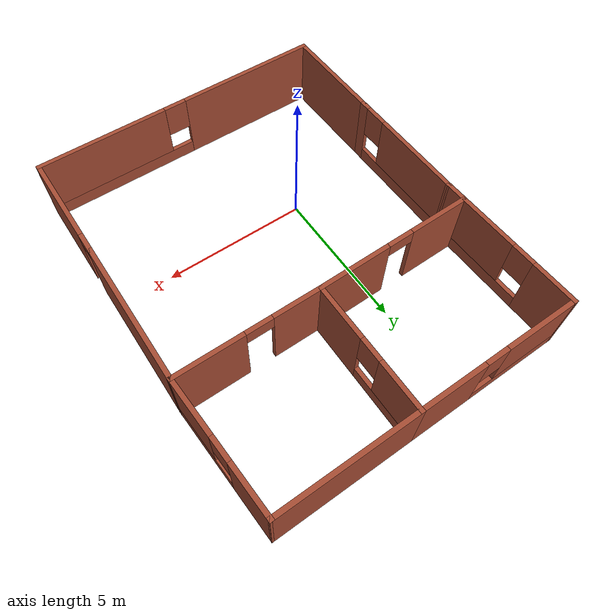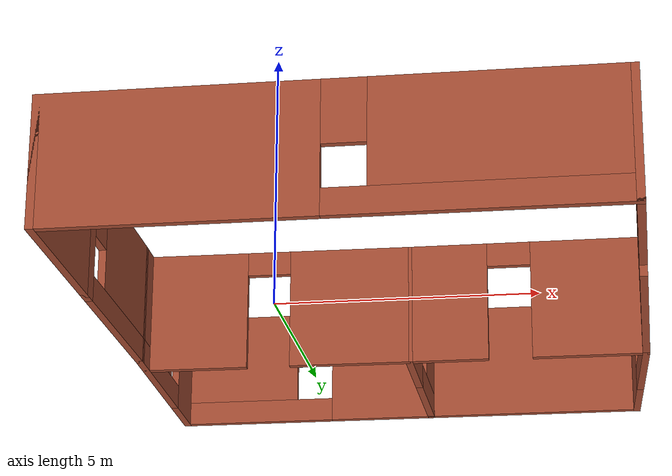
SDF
<?xml version='1.0'?>
<sdf version='1.7'>
  <model name='Map4'>
    <pose>1.69636 2.01709 0 0 -0 0</pose>
    <link name='Wall_0'>
      <collision name='Wall_0_Collision'>
        <geometry>
          <box>
            <size>3.75 0.15 2.5</size>
          </box>
        </geometry>
        <pose>0 0 1.25 0 -0 0</pose>
      </collision>
      <visual name='Wall_0_Visual'>
        <pose>0 0 1.25 0 -0 0</pose>
        <geometry>
          <box>
            <size>3.75 0.15 2.5</size>
          </box>
        </geometry>
        <material>
          <script>
            <uri>file://media/materials/scripts/gazebo.material</uri>
            <name>Gazebo/Bricks</name>
          </script>
          <ambient>1 1 1 1</ambient>
        </material>
        <meta>
          <layer>0</layer>
        </meta>
      </visual>
      <pose>-5.12636 -4.72709 0 0 -0 -1.5708</pose>
    </link>
    <link name='Wall_1'>
      <pose>0.048638 -6.52709 0 0 -0 0</pose>
      <visual name='Wall_1_Visual_0'>
        <pose>-2.71065 0 1.25 0 -0 0</pose>
        <geometry>
          <box>
            <size>5.07869 0.15 2.5</size>
          </box>
        </geometry>
        <material>
          <script>
            <uri>file://media/materials/scripts/gazebo.material</uri>
            <name>Gazebo/Bricks</name>
          </script>
          <ambient>1 1 1 1</ambient>
        </material>
        <meta>
          <layer>0</layer>
        </meta>
      </visual>
      <collision name='Wall_1_Collision_0'>
        <geometry>
          <box>
            <size>5.07869 0.15 2.5</size>
          </box>
        </geometry>
        <pose>-2.71065 0 1.25 0 -0 0</pose>
      </collision>
      <visual name='Wall_1_Visual_1'>
        <pose>2.53935 0 0.25 0 -0 0</pose>
        <geometry>
          <box>
            <size>5.42131 0.15 0.5</size>
          </box>
        </geometry>
        <material>
          <script>
            <uri>file://media/materials/scripts/gazebo.material</uri>
            <name>Gazebo/Bricks</name>
          </script>
          <ambient>1 1 1 1</ambient>
        </material>
        <meta>
          <layer>0</layer>
        </meta>
      </visual>
      <collision name='Wall_1_Collision_1'>
        <geometry>
          <box>
            <size>5.42131 0.15 0.5</size>
          </box>
        </geometry>
        <pose>2.53935 0 0.25 0 -0 0</pose>
      </collision>
      <visual name='Wall_1_Visual_2'>
        <pose>2.93935 0 1.5 0 -0 0</pose>
        <geometry>
          <box>
            <size>4.62131 0.15 2</size>
          </box>
        </geometry>
        <material>
          <script>
            <uri>file://media/materials/scripts/gazebo.material</uri>
            <name>Gazebo/Bricks</name>
          </script>
          <ambient>1 1 1 1</ambient>
        </material>
        <meta>
          <layer>0</layer>
        </meta>
      </visual>
      <collision name='Wall_1_Collision_2'>
        <geometry>
          <box>
            <size>4.62131 0.15 2</size>
          </box>
        </geometry>
        <pose>2.93935 0 1.5 0 -0 0</pose>
      </collision>
      <visual name='Wall_1_Visual_3'>
        <pose>0.228691 0 1.9 0 -0 0</pose>
        <geometry>
          <box>
            <size>0.8 0.15 1.2</size>
          </box>
        </geometry>
        <material>
          <script>
            <uri>file://media/materials/scripts/gazebo.material</uri>
            <name>Gazebo/Bricks</name>
          </script>
          <ambient>1 1 1 1</ambient>
        </material>
        <meta>
          <layer>0</layer>
        </meta>
      </visual>
      <collision name='Wall_1_Collision_3'>
        <geometry>
          <box>
            <size>0.8 0.15 1.2</size>
          </box>
        </geometry>
        <pose>0.228691 0 1.9 0 -0 0</pose>
      </collision>
    </link>
    <link name='Wall_10'>
      <pose>0.373638 4.34791 0 0 -0 1.5708</pose>
      <visual name='Wall_10_Visual_0'>
        <pose>-1.26203 0 1.25 0 -0 0</pose>
        <geometry>
          <box>
            <size>1.97595 0.15 2.5</size>
          </box>
        </geometry>
        <material>
          <script>
            <uri>file://media/materials/scripts/gazebo.material</uri>
            <name>Gazebo/Bricks</name>
          </script>
          <ambient>1 1 1 1</ambient>
        </material>
        <meta>
          <layer>0</layer>
        </meta>
      </visual>
      <collision name='Wall_10_Collision_0'>
        <geometry>
          <box>
            <size>1.97595 0.15 2.5</size>
          </box>
        </geometry>
        <pose>-1.26203 0 1.25 0 -0 0</pose>
      </collision>
      <visual name='Wall_10_Visual_1'>
        <pose>0.987973 0 0.25 0 -0 0</pose>
        <geometry>
          <box>
            <size>2.52405 0.15 0.5</size>
          </box>
        </geometry>
        <material>
          <script>
            <uri>file://media/materials/scripts/gazebo.material</uri>
            <name>Gazebo/Bricks</name>
          </script>
          <ambient>1 1 1 1</ambient>
        </material>
        <meta>
          <layer>0</layer>
        </meta>
      </visual>
      <collision name='Wall_10_Collision_1'>
        <geometry>
          <box>
            <size>2.52405 0.15 0.5</size>
          </box>
        </geometry>
        <pose>0.987973 0 0.25 0 -0 0</pose>
      </collision>
      <visual name='Wall_10_Visual_2'>
        <pose>1.38797 0 1.5 0 -0 0</pose>
        <geometry>
          <box>
            <size>1.72405 0.15 2</size>
          </box>
        </geometry>
        <material>
          <script>
            <uri>file://media/materials/scripts/gazebo.material</uri>
            <name>Gazebo/Bricks</name>
          </script>
          <ambient>1 1 1 1</ambient>
        </material>
        <meta>
          <layer>0</layer>
        </meta>
      </visual>
      <collision name='Wall_10_Collision_2'>
        <geometry>
          <box>
            <size>1.72405 0.15 2</size>
          </box>
        </geometry>
        <pose>1.38797 0 1.5 0 -0 0</pose>
      </collision>
      <visual name='Wall_10_Visual_3'>
        <pose>0.125947 0 1.9 0 -0 0</pose>
        <geometry>
          <box>
            <size>0.8 0.15 1.2</size>
          </box>
        </geometry>
        <material>
          <script>
            <uri>file://media/materials/scripts/gazebo.material</uri>
            <name>Gazebo/Bricks</name>
          </script>
          <ambient>1 1 1 1</ambient>
        </material>
        <meta>
          <layer>0</layer>
        </meta>
      </visual>
      <collision name='Wall_10_Collision_3'>
        <geometry>
          <box>
            <size>0.8 0.15 1.2</size>
          </box>
        </geometry>
        <pose>0.125947 0 1.9 0 -0 0</pose>
      </collision>
    </link>
    <link name='Wall_11'>
      <pose>-2.42636 6.52291 0 0 -0 3.14159</pose>
      <visual name='Wall_11_Visual_0'>
        <pose>-1.70994 0 1.25 0 -0 0</pose>
        <geometry>
          <box>
            <size>2.33012 0.15 2.5</size>
          </box>
        </geometry>
        <material>
          <script>
            <uri>file://media/materials/scripts/gazebo.material</uri>
            <name>Gazebo/Bricks</name>
          </script>
          <ambient>1 1 1 1</ambient>
        </material>
        <meta>
          <layer>0</layer>
        </meta>
      </visual>
      <collision name='Wall_11_Collision_0'>
        <geometry>
          <box>
            <size>2.33012 0.15 2.5</size>
          </box>
        </geometry>
        <pose>-1.70994 0 1.25 0 -0 0</pose>
      </collision>
      <visual name='Wall_11_Visual_1'>
        <pose>1.16506 0 0.25 0 -0 0</pose>
        <geometry>
          <box>
            <size>3.41988 0.15 0.5</size>
          </box>
        </geometry>
        <material>
          <script>
            <uri>file://media/materials/scripts/gazebo.material</uri>
            <name>Gazebo/Bricks</name>
          </script>
          <ambient>1 1 1 1</ambient>
        </material>
        <meta>
          <layer>0</layer>
        </meta>
      </visual>
      <collision name='Wall_11_Collision_1'>
        <geometry>
          <box>
            <size>3.41988 0.15 0.5</size>
          </box>
        </geometry>
        <pose>1.16506 0 0.25 0 -0 0</pose>
      </collision>
      <visual name='Wall_11_Visual_2'>
        <pose>1.56506 0 1.5 0 -0 0</pose>
        <geometry>
          <box>
            <size>2.61988 0.15 2</size>
          </box>
        </geometry>
        <material>
          <script>
            <uri>file://media/materials/scripts/gazebo.material</uri>
            <name>Gazebo/Bricks</name>
          </script>
          <ambient>1 1 1 1</ambient>
        </material>
        <meta>
          <layer>0</layer>
        </meta>
      </visual>
      <collision name='Wall_11_Collision_2'>
        <geometry>
          <box>
            <size>2.61988 0.15 2</size>
          </box>
        </geometry>
        <pose>1.56506 0 1.5 0 -0 0</pose>
      </collision>
      <visual name='Wall_11_Visual_3'>
        <pose>-0.144876 0 1.9 0 -0 0</pose>
        <geometry>
          <box>
            <size>0.8 0.15 1.2</size>
          </box>
        </geometry>
        <material>
          <script>
            <uri>file://media/materials/scripts/gazebo.material</uri>
            <name>Gazebo/Bricks</name>
          </script>
          <ambient>1 1 1 1</ambient>
        </material>
        <meta>
          <layer>0</layer>
        </meta>
      </visual>
      <collision name='Wall_11_Collision_3'>
        <geometry>
          <box>
            <size>0.8 0.15 1.2</size>
          </box>
        </geometry>
        <pose>-0.144876 0 1.9 0 -0 0</pose>
      </collision>
    </link>
    <link name='Wall_12'>
      <pose>-5.17636 3.97291 0 0 -0 -1.55119</pose>
      <visual name='Wall_12_Visual_0'>
        <pose>-1.83319 0 1.25 0 -0 0</pose>
        <geometry>
          <box>
            <size>1.58459 0.15 2.5</size>
          </box>
        </geometry>
        <material>
          <script>
            <uri>file://media/materials/scripts/gazebo.material</uri>
            <name>Gazebo/Bricks</name>
          </script>
          <ambient>1 1 1 1</ambient>
        </material>
        <meta>
          <layer>0</layer>
        </meta>
      </visual>
      <collision name='Wall_12_Collision_0'>
        <geometry>
          <box>
            <size>1.58459 0.15 2.5</size>
          </box>
        </geometry>
        <pose>-1.83319 0 1.25 0 -0 0</pose>
      </collision>
      <visual name='Wall_12_Visual_1'>
        <pose>0.792298 0 0.25 0 -0 0</pose>
        <geometry>
          <box>
            <size>3.66639 0.15 0.5</size>
          </box>
        </geometry>
        <material>
          <script>
            <uri>file://media/materials/scripts/gazebo.material</uri>
            <name>Gazebo/Bricks</name>
          </script>
          <ambient>1 1 1 1</ambient>
        </material>
        <meta>
          <layer>0</layer>
        </meta>
      </visual>
      <collision name='Wall_12_Collision_1'>
        <geometry>
          <box>
            <size>3.66639 0.15 0.5</size>
          </box>
        </geometry>
        <pose>0.792298 0 0.25 0 -0 0</pose>
      </collision>
      <visual name='Wall_12_Visual_2'>
        <pose>1.1923 0 1.5 0 -0 0</pose>
        <geometry>
          <box>
            <size>2.86639 0.15 2</size>
          </box>
        </geometry>
        <material>
          <script>
            <uri>file://media/materials/scripts/gazebo.material</uri>
            <name>Gazebo/Bricks</name>
          </script>
          <ambient>1 1 1 1</ambient>
        </material>
        <meta>
          <layer>0</layer>
        </meta>
      </visual>
      <collision name='Wall_12_Collision_2'>
        <geometry>
          <box>
            <size>2.86639 0.15 2</size>
          </box>
        </geometry>
        <pose>1.1923 0 1.5 0 -0 0</pose>
      </collision>
      <visual name='Wall_12_Visual_3'>
        <pose>-0.640895 0 1.9 0 -0 0</pose>
        <geometry>
          <box>
            <size>0.8 0.15 1.2</size>
          </box>
        </geometry>
        <material>
          <script>
            <uri>file://media/materials/scripts/gazebo.material</uri>
            <name>Gazebo/Bricks</name>
          </script>
          <ambient>1 1 1 1</ambient>
        </material>
        <meta>
          <layer>0</layer>
        </meta>
      </visual>
      <collision name='Wall_12_Collision_3'>
        <geometry>
          <box>
            <size>0.8 0.15 1.2</size>
          </box>
        </geometry>
        <pose>-0.640895 0 1.9 0 -0 0</pose>
      </collision>
    </link>
    <link name='Wall_14'>
      <collision name='Wall_14_Collision'>
        <geometry>
          <box>
            <size>4.75 0.15 2.5</size>
          </box>
        </geometry>
        <pose>0 0 1.25 0 -0 0</pose>
      </collision>
      <visual name='Wall_14_Visual'>
        <pose>0 0 1.25 0 -0 0</pose>
        <geometry>
          <box>
            <size>4.75 0.15 2.5</size>
          </box>
        </geometry>
        <material>
          <script>
            <uri>file://media/materials/scripts/gazebo.material</uri>
            <name>Gazebo/Bricks</name>
          </script>
          <ambient>1 1 1 1</ambient>
        </material>
        <meta>
          <layer>0</layer>
        </meta>
      </visual>
      <pose>2.67364 6.52291 0 0 -0 0</pose>
    </link>
    <link name='Wall_15'>
      <pose>5.09864 4.34791 0 0 -0 -1.51339</pose>
      <visual name='Wall_15_Visual_0'>
        <pose>-1.38189 0 1.25 0 -0 0</pose>
        <geometry>
          <box>
            <size>1.74339 0.15 2.5</size>
          </box>
        </geometry>
        <material>
          <script>
            <uri>file://media/materials/scripts/gazebo.material</uri>
            <name>Gazebo/Bricks</name>
          </script>
          <ambient>1 1 1 1</ambient>
        </material>
        <meta>
          <layer>0</layer>
        </meta>
      </visual>
      <collision name='Wall_15_Collision_0'>
        <geometry>
          <box>
            <size>1.74339 0.15 2.5</size>
          </box>
        </geometry>
        <pose>-1.38189 0 1.25 0 -0 0</pose>
      </collision>
      <visual name='Wall_15_Visual_1'>
        <pose>0.871697 0 0.25 0 -0 0</pose>
        <geometry>
          <box>
            <size>2.76378 0.15 0.5</size>
          </box>
        </geometry>
        <material>
          <script>
            <uri>file://media/materials/scripts/gazebo.material</uri>
            <name>Gazebo/Bricks</name>
          </script>
          <ambient>1 1 1 1</ambient>
        </material>
        <meta>
          <layer>0</layer>
        </meta>
      </visual>
      <collision name='Wall_15_Collision_1'>
        <geometry>
          <box>
            <size>2.76378 0.15 0.5</size>
          </box>
        </geometry>
        <pose>0.871697 0 0.25 0 -0 0</pose>
      </collision>
      <visual name='Wall_15_Visual_2'>
        <pose>1.2717 0 1.5 0 -0 0</pose>
        <geometry>
          <box>
            <size>1.96378 0.15 2</size>
          </box>
        </geometry>
        <material>
          <script>
            <uri>file://media/materials/scripts/gazebo.material</uri>
            <name>Gazebo/Bricks</name>
          </script>
          <ambient>1 1 1 1</ambient>
        </material>
        <meta>
          <layer>0</layer>
        </meta>
      </visual>
      <collision name='Wall_15_Collision_2'>
        <geometry>
          <box>
            <size>1.96378 0.15 2</size>
          </box>
        </geometry>
        <pose>1.2717 0 1.5 0 -0 0</pose>
      </collision>
      <visual name='Wall_15_Visual_3'>
        <pose>-0.110195 0 1.9 0 -0 0</pose>
        <geometry>
          <box>
            <size>0.8 0.15 1.2</size>
          </box>
        </geometry>
        <material>
          <script>
            <uri>file://media/materials/scripts/gazebo.material</uri>
            <name>Gazebo/Bricks</name>
          </script>
          <ambient>1 1 1 1</ambient>
        </material>
        <meta>
          <layer>0</layer>
        </meta>
      </visual>
      <collision name='Wall_15_Collision_3'>
        <geometry>
          <box>
            <size>0.8 0.15 1.2</size>
          </box>
        </geometry>
        <pose>-0.110195 0 1.9 0 -0 0</pose>
      </collision>
    </link>
    <link name='Wall_17'>
      <pose>-2.36144 2.13889 0 0 -0 0.012438</pose>
      <visual name='Wall_17_Visual_0'>
        <pose>-1.73256 0 1.25 0 -0 0</pose>
        <geometry>
          <box>
            <size>2.15546 0.15 2.5</size>
          </box>
        </geometry>
        <material>
          <script>
            <uri>file://media/materials/scripts/gazebo.material</uri>
            <name>Gazebo/Bricks</name>
          </script>
          <ambient>1 1 1 1</ambient>
        </material>
        <meta>
          <layer>0</layer>
        </meta>
      </visual>
      <collision name='Wall_17_Collision_0'>
        <geometry>
          <box>
            <size>2.15546 0.15 2.5</size>
          </box>
        </geometry>
        <pose>-1.73256 0 1.25 0 -0 0</pose>
      </collision>
      <visual name='Wall_17_Visual_1'>
        <pose>1.52773 0 1.25 0 -0 0</pose>
        <geometry>
          <box>
            <size>2.56512 0.15 2.5</size>
          </box>
        </geometry>
        <material>
          <script>
            <uri>file://media/materials/scripts/gazebo.material</uri>
            <name>Gazebo/Bricks</name>
          </script>
          <ambient>1 1 1 1</ambient>
        </material>
        <meta>
          <layer>0</layer>
        </meta>
      </visual>
      <collision name='Wall_17_Collision_1'>
        <geometry>
          <box>
            <size>2.56512 0.15 2.5</size>
          </box>
        </geometry>
        <pose>1.52773 0 1.25 0 -0 0</pose>
      </collision>
      <visual name='Wall_17_Visual_2'>
        <pose>-0.204831 0 2.25 0 -0 0</pose>
        <geometry>
          <box>
            <size>0.9 0.15 0.5</size>
          </box>
        </geometry>
        <material>
          <script>
            <uri>file://media/materials/scripts/gazebo.material</uri>
            <name>Gazebo/Bricks</name>
          </script>
          <ambient>1 1 1 1</ambient>
        </material>
        <meta>
          <layer>0</layer>
        </meta>
      </visual>
      <collision name='Wall_17_Collision_2'>
        <geometry>
          <box>
            <size>0.9 0.15 0.5</size>
          </box>
        </geometry>
        <pose>-0.204831 0 2.25 0 -0 0</pose>
      </collision>
    </link>
    <link name='Wall_2'>
      <pose>5.22364 -4.60209 0 0 -0 1.5708</pose>
      <visual name='Wall_2_Visual_0'>
        <pose>-0.385678 0 1.25 0 -0 0</pose>
        <geometry>
          <box>
            <size>3.22865 0.15 2.5</size>
          </box>
        </geometry>
        <material>
          <script>
            <uri>file://media/materials/scripts/gazebo.material</uri>
            <name>Gazebo/Bricks</name>
          </script>
          <ambient>1 1 1 1</ambient>
        </material>
        <meta>
          <layer>0</layer>
        </meta>
      </visual>
      <collision name='Wall_2_Collision_0'>
        <geometry>
          <box>
            <size>3.22865 0.15 2.5</size>
          </box>
        </geometry>
        <pose>-0.385678 0 1.25 0 -0 0</pose>
      </collision>
      <visual name='Wall_2_Visual_1'>
        <pose>1.61432 0 2.25 0 -0 0</pose>
        <geometry>
          <box>
            <size>0.771355 0.15 0.5</size>
          </box>
        </geometry>
        <material>
          <script>
            <uri>file://media/materials/scripts/gazebo.material</uri>
            <name>Gazebo/Bricks</name>
          </script>
          <ambient>1 1 1 1</ambient>
        </material>
        <meta>
          <layer>0</layer>
        </meta>
      </visual>
      <collision name='Wall_2_Collision_1'>
        <geometry>
          <box>
            <size>0.771355 0.15 0.5</size>
          </box>
        </geometry>
        <pose>1.61432 0 2.25 0 -0 0</pose>
      </collision>
    </link>
    <link name='Wall_4'>
      <pose>-5.12636 -0.75209 0 0 -0 1.5708</pose>
      <visual name='Wall_4_Visual_0'>
        <pose>-2.06175 0 1.25 0 -0 0</pose>
        <geometry>
          <box>
            <size>0.376503 0.15 2.5</size>
          </box>
        </geometry>
        <material>
          <script>
            <uri>file://media/materials/scripts/gazebo.material</uri>
            <name>Gazebo/Bricks</name>
          </script>
          <ambient>1 1 1 1</ambient>
        </material>
        <meta>
          <layer>0</layer>
        </meta>
      </visual>
      <collision name='Wall_4_Collision_0'>
        <geometry>
          <box>
            <size>0.376503 0.15 2.5</size>
          </box>
        </geometry>
        <pose>-2.06175 0 1.25 0 -0 0</pose>
      </collision>
      <visual name='Wall_4_Visual_1'>
        <pose>0.188252 0 0.25 0 -0 0</pose>
        <geometry>
          <box>
            <size>4.1235 0.15 0.5</size>
          </box>
        </geometry>
        <material>
          <script>
            <uri>file://media/materials/scripts/gazebo.material</uri>
            <name>Gazebo/Bricks</name>
          </script>
          <ambient>1 1 1 1</ambient>
        </material>
        <meta>
          <layer>0</layer>
        </meta>
      </visual>
      <collision name='Wall_4_Collision_1'>
        <geometry>
          <box>
            <size>4.1235 0.15 0.5</size>
          </box>
        </geometry>
        <pose>0.188252 0 0.25 0 -0 0</pose>
      </collision>
      <visual name='Wall_4_Visual_2'>
        <pose>0.588252 0 1.5 0 -0 0</pose>
        <geometry>
          <box>
            <size>3.3235 0.15 2</size>
          </box>
        </geometry>
        <material>
          <script>
            <uri>file://media/materials/scripts/gazebo.material</uri>
            <name>Gazebo/Bricks</name>
          </script>
          <ambient>1 1 1 1</ambient>
        </material>
        <meta>
          <layer>0</layer>
        </meta>
      </visual>
      <collision name='Wall_4_Collision_2'>
        <geometry>
          <box>
            <size>3.3235 0.15 2</size>
          </box>
        </geometry>
        <pose>0.588252 0 1.5 0 -0 0</pose>
      </collision>
      <visual name='Wall_4_Visual_3'>
        <pose>-1.4735 0 1.9 0 -0 0</pose>
        <geometry>
          <box>
            <size>0.8 0.15 1.2</size>
          </box>
        </geometry>
        <material>
          <script>
            <uri>file://media/materials/scripts/gazebo.material</uri>
            <name>Gazebo/Bricks</name>
          </script>
          <ambient>1 1 1 1</ambient>
        </material>
        <meta>
          <layer>0</layer>
        </meta>
      </visual>
      <collision name='Wall_4_Collision_3'>
        <geometry>
          <box>
            <size>0.8 0.15 1.2</size>
          </box>
        </geometry>
        <pose>-1.4735 0 1.9 0 -0 0</pose>
      </collision>
    </link>
    <link name='Wall_8'>
      <collision name='Wall_8_Collision'>
        <geometry>
          <box>
            <size>5 0.15 2.5</size>
          </box>
        </geometry>
        <pose>0 0 1.25 0 -0 0</pose>
      </collision>
      <visual name='Wall_8_Visual'>
        <pose>0 0 1.25 0 -0 0</pose>
        <geometry>
          <box>
            <size>5 0.15 2.5</size>
          </box>
        </geometry>
        <material>
          <script>
            <uri>file://media/materials/scripts/gazebo.material</uri>
            <name>Gazebo/Bricks</name>
          </script>
          <ambient>1 1 1 1</ambient>
        </material>
        <meta>
          <layer>0</layer>
        </meta>
      </visual>
      <pose>5.22364 -0.25209 0 0 -0 1.5708</pose>
    </link>
    <link name='Wall_9'>
      <pose>2.79864 2.17291 0 0 -0 3.14159</pose>
      <visual name='Wall_9_Visual_0'>
        <pose>-1.31002 0 1.25 0 -0 0</pose>
        <geometry>
          <box>
            <size>2.37996 0.15 2.5</size>
          </box>
        </geometry>
        <material>
          <script>
            <uri>file://media/materials/scripts/gazebo.material</uri>
            <name>Gazebo/Bricks</name>
          </script>
          <ambient>1 1 1 1</ambient>
        </material>
        <meta>
          <layer>0</layer>
        </meta>
      </visual>
      <collision name='Wall_9_Collision_0'>
        <geometry>
          <box>
            <size>2.37996 0.15 2.5</size>
          </box>
        </geometry>
        <pose>-1.31002 0 1.25 0 -0 0</pose>
      </collision>
      <visual name='Wall_9_Visual_1'>
        <pose>1.63998 0 1.25 0 -0 0</pose>
        <geometry>
          <box>
            <size>1.72004 0.15 2.5</size>
          </box>
        </geometry>
        <material>
          <script>
            <uri>file://media/materials/scripts/gazebo.material</uri>
            <name>Gazebo/Bricks</name>
          </script>
          <ambient>1 1 1 1</ambient>
        </material>
        <meta>
          <layer>0</layer>
        </meta>
      </visual>
      <collision name='Wall_9_Collision_1'>
        <geometry>
          <box>
            <size>1.72004 0.15 2.5</size>
          </box>
        </geometry>
        <pose>1.63998 0 1.25 0 -0 0</pose>
      </collision>
      <visual name='Wall_9_Visual_2'>
        <pose>0.329958 0 2.25 0 -0 0</pose>
        <geometry>
          <box>
            <size>0.9 0.15 0.5</size>
          </box>
        </geometry>
        <material>
          <script>
            <uri>file://media/materials/scripts/gazebo.material</uri>
            <name>Gazebo/Bricks</name>
          </script>
          <ambient>1 1 1 1</ambient>
        </material>
        <meta>
          <layer>0</layer>
        </meta>
      </visual>
      <collision name='Wall_9_Collision_2'>
        <geometry>
          <box>
            <size>0.9 0.15 0.5</size>
          </box>
        </geometry>
        <pose>0.329958 0 2.25 0 -0 0</pose>
      </collision>
    </link>
    <static>1</static>
  </model>
</sdf>
